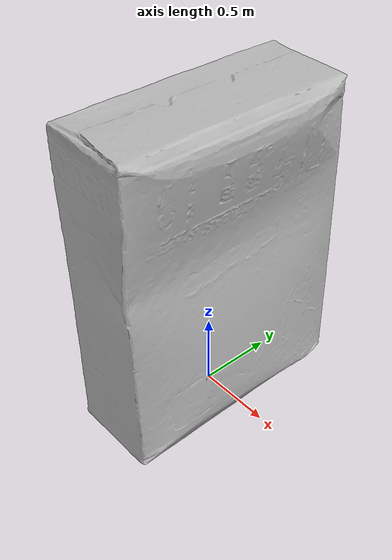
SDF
<?xml version='1.0'?>
<sdf version="1.4">
  <model name="cracker">
    <pose>0 0 0  0 0 0</pose>
    <static>true</static>
    <link name="body">
      <inertial>
          <mass>0.411</mass>
          <inertia>
            <ixx>0.002365</ixx>
            <ixy>0.000000</ixy>
            <ixz>0.000000</ixz>
            <iyy>0.001634</iyy>
            <iyz>0.000000</iyz>
            <izz>0.000978</izz>
          </inertia>
        </inertial>
      <collision name="collision">
        <geometry>
          <mesh>
		<uri>file://meshes/cracker.dae</uri>
          </mesh>
        </geometry>
      </collision>
      <visual name="visual">
        <geometry>
          <mesh>
		<uri>file://meshes/cracker.dae</uri>
          </mesh>
        </geometry>
      </visual>
    </link>
  </model>
</sdf>
